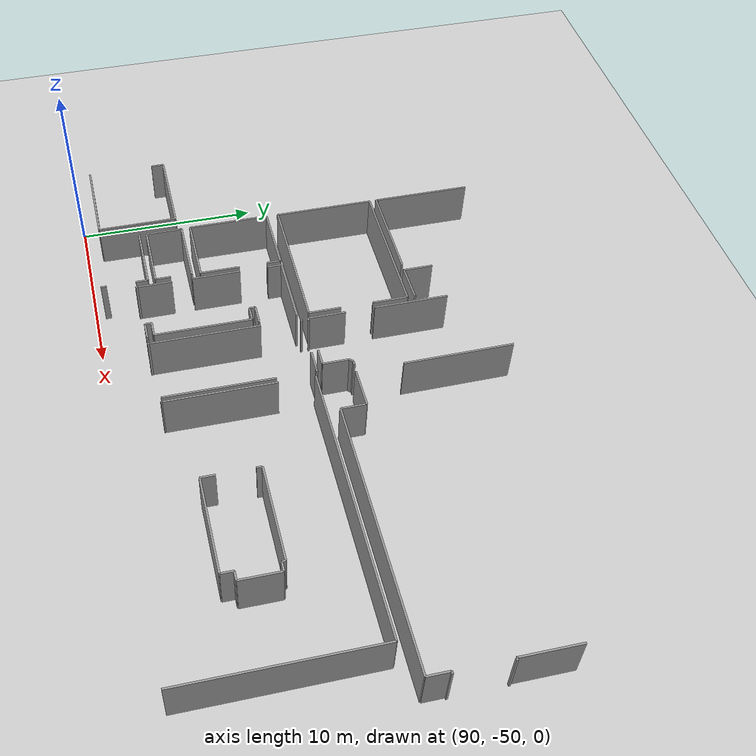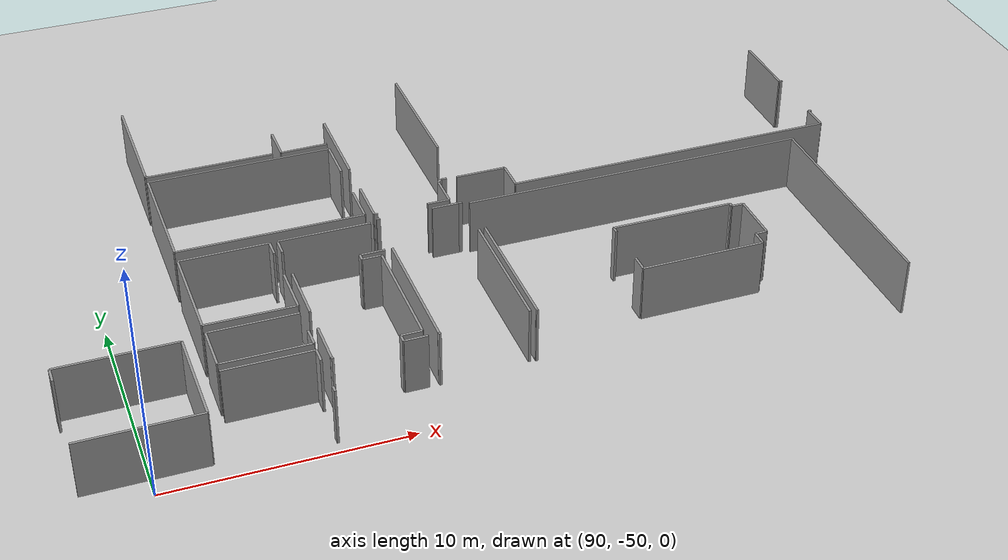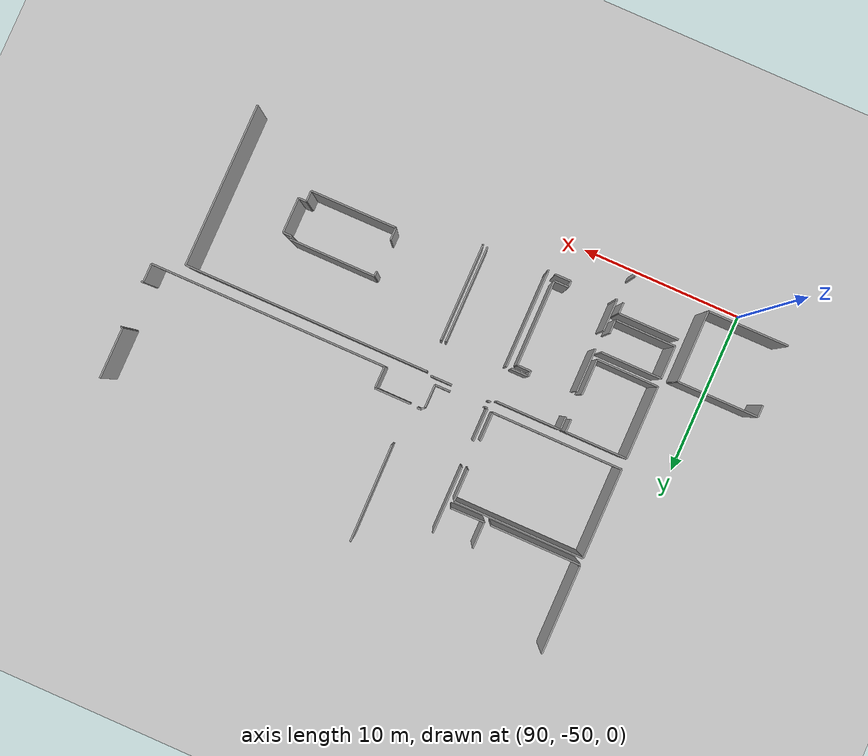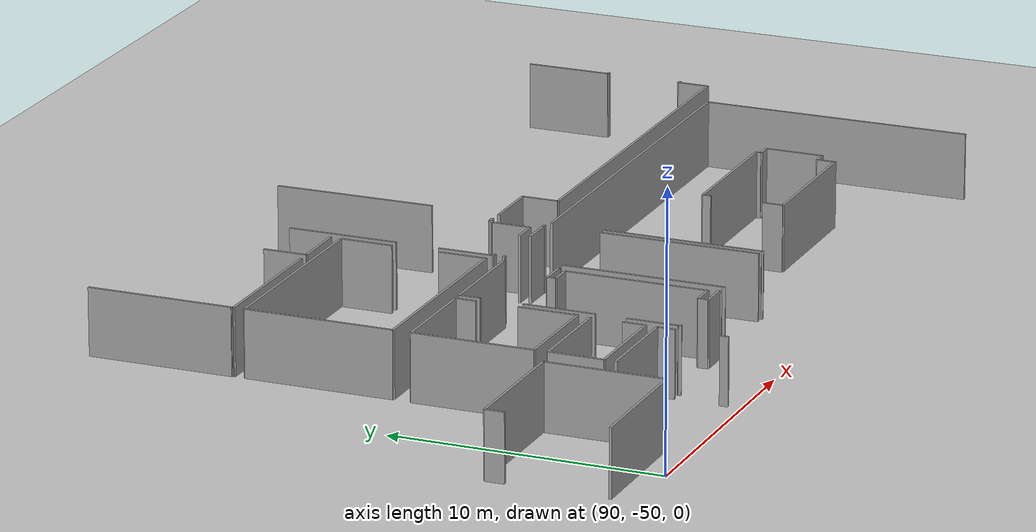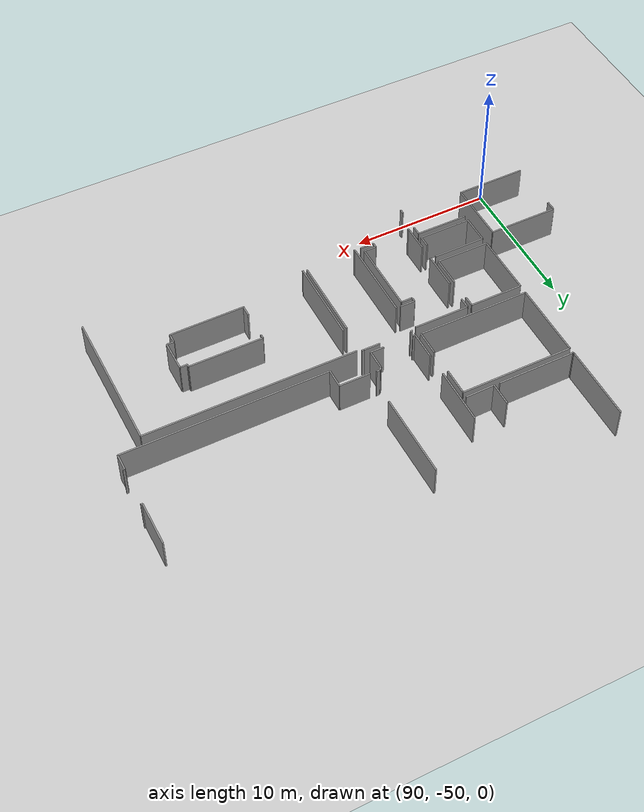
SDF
<sdf version="1.6">
 <world name="default">
  <model name="ground_plane">
   <static>1</static>
   <link name="link">
    <collision name="collision">
     <geometry><plane><normal>0 0 1</normal><size>100 100</size></plane></geometry>
     <surface><friction><ode><mu>100</mu><mu2>50</mu2></ode></friction></surface>
    </collision>
    <visual name="visual">
     <cast_shadows>0</cast_shadows>
     <geometry><plane><normal>0 0 1</normal><size>100 100</size></plane></geometry>
     <material>
      <script><uri>file://media/materials/scripts/gazebo.material</uri><name>Gazebo/Grey</name></script>
     </material>
    </visual>
   </link>
  </model>
  <model name="50036894">
   <static>1</static>
   <link name="Wall_535">
    <collision name="Wall_535_Collision">
     <geometry><box><size>0.717179466046 0.1 2.5</size></box></geometry>
     <pose>0.358589733023 0 1.25 0 0 0</pose>
    </collision>
    <visual name="Wall_535_Visual">
     <pose>0.358589733023 0 1.25 0 0 0</pose>
     <geometry><box><size>0.717179466046 0.1 2.5</size></box></geometry>
     <material>
      <script><uri>file://media/materials/scripts/gazebo.material</uri><name>Gazebo/Grey</name></script>
      <ambient>1 1 1 1</ambient>
     </material>
    </visual>
    <pose>210.166297891 -112.720932739 0 0 0 1.57079632679</pose>
   </link>
   <link name="Wall_536">
    <collision name="Wall_536_Collision">
     <geometry><box><size>4.97055075478 0.1 2.5</size></box></geometry>
     <pose>2.48527537739 0 1.25 0 0 0</pose>
    </collision>
    <visual name="Wall_536_Visual">
     <pose>2.48527537739 0 1.25 0 0 0</pose>
     <geometry><box><size>4.97055075478 0.1 2.5</size></box></geometry>
     <material>
      <script><uri>file://media/materials/scripts/gazebo.material</uri><name>Gazebo/Grey</name></script>
      <ambient>1 1 1 1</ambient>
     </material>
    </visual>
    <pose>210.166297891 -112.003753273 0 0 0 0.0</pose>
   </link>
   <link name="Wall_537">
    <collision name="Wall_537_Collision">
     <geometry><box><size>4.41187099392 0.1 2.5</size></box></geometry>
     <pose>2.20593549696 0 1.25 0 0 0</pose>
    </collision>
    <visual name="Wall_537_Visual">
     <pose>2.20593549696 0 1.25 0 0 0</pose>
     <geometry><box><size>4.41187099392 0.1 2.5</size></box></geometry>
     <material>
      <script><uri>file://media/materials/scripts/gazebo.material</uri><name>Gazebo/Grey</name></script>
      <ambient>1 1 1 1</ambient>
     </material>
    </visual>
    <pose>215.136848645 -112.003753273 0 0 0 -1.57079632679</pose>
   </link>
   <link name="Wall_538">
    <collision name="Wall_538_Collision">
     <geometry><box><size>4.97057808781 0.1 2.5</size></box></geometry>
     <pose>2.48528904391 0 1.25 0 0 0</pose>
    </collision>
    <visual name="Wall_538_Visual">
     <pose>2.48528904391 0 1.25 0 0 0</pose>
     <geometry><box><size>4.97057808781 0.1 2.5</size></box></geometry>
     <material>
      <script><uri>file://media/materials/scripts/gazebo.material</uri><name>Gazebo/Grey</name></script>
      <ambient>1 1 1 1</ambient>
     </material>
    </visual>
    <pose>215.136848645 -116.415624267 0 0 0 -3.13827633922</pose>
   </link>
   <link name="Wall_584">
    <collision name="Wall_584_Collision">
     <geometry><box><size>5.93879375384 0.1 2.5</size></box></geometry>
     <pose>2.96939687692 0 1.25 0 0 0</pose>
    </collision>
    <visual name="Wall_584_Visual">
     <pose>2.96939687692 0 1.25 0 0 0</pose>
     <geometry><box><size>5.93879375384 0.1 2.5</size></box></geometry>
     <material>
      <script><uri>file://media/materials/scripts/gazebo.material</uri><name>Gazebo/Grey</name></script>
      <ambient>1 1 1 1</ambient>
     </material>
    </visual>
    <pose>224.443951334 -114.775342518 0 0 0 1.57079632679</pose>
   </link>
   <link name="Wall_585">
    <collision name="Wall_585_Collision">
     <geometry><box><size>0.164839693398 0.1 2.5</size></box></geometry>
     <pose>0.0824198466991 0 1.25 0 0 0</pose>
    </collision>
    <visual name="Wall_585_Visual">
     <pose>0.0824198466991 0 1.25 0 0 0</pose>
     <geometry><box><size>0.164839693398 0.1 2.5</size></box></geometry>
     <material>
      <script><uri>file://media/materials/scripts/gazebo.material</uri><name>Gazebo/Grey</name></script>
      <ambient>1 1 1 1</ambient>
     </material>
    </visual>
    <pose>224.443951334 -106.630232868 0 0 0 0.0</pose>
   </link>
   <link name="Wall_586">
    <collision name="Wall_586_Collision">
     <geometry><box><size>1.15894984435 0.1 2.5</size></box></geometry>
     <pose>0.579474922177 0 1.25 0 0 0</pose>
    </collision>
    <visual name="Wall_586_Visual">
     <pose>0.579474922177 0 1.25 0 0 0</pose>
     <geometry><box><size>1.15894984435 0.1 2.5</size></box></geometry>
     <material>
      <script><uri>file://media/materials/scripts/gazebo.material</uri><name>Gazebo/Grey</name></script>
      <ambient>1 1 1 1</ambient>
     </material>
    </visual>
    <pose>226.87089882 -106.630232868 0 0 0 0.0</pose>
   </link>
   <link name="Wall_587">
    <collision name="Wall_587_Collision">
     <geometry><box><size>0.162303698115 0.1 2.5</size></box></geometry>
     <pose>0.0811518490576 0 1.25 0 0 0</pose>
    </collision>
    <visual name="Wall_587_Visual">
     <pose>0.0811518490576 0 1.25 0 0 0</pose>
     <geometry><box><size>0.162303698115 0.1 2.5</size></box></geometry>
     <material>
      <script><uri>file://media/materials/scripts/gazebo.material</uri><name>Gazebo/Grey</name></script>
      <ambient>1 1 1 1</ambient>
     </material>
    </visual>
    <pose>228.029848664 -106.630232868 0 0 0 0.0</pose>
   </link>
   <link name="Wall_588">
    <collision name="Wall_588_Collision">
     <geometry><box><size>5.93727215667 0.1 2.5</size></box></geometry>
     <pose>2.96863607834 0 1.25 0 0 0</pose>
    </collision>
    <visual name="Wall_588_Visual">
     <pose>2.96863607834 0 1.25 0 0 0</pose>
     <geometry><box><size>5.93727215667 0.1 2.5</size></box></geometry>
     <material>
      <script><uri>file://media/materials/scripts/gazebo.material</uri><name>Gazebo/Grey</name></script>
      <ambient>1 1 1 1</ambient>
     </material>
    </visual>
    <pose>228.192152363 -108.754889716 0 0 0 -1.57079632679</pose>
   </link>
   <link name="Wall_591">
    <collision name="Wall_591_Collision">
     <geometry><box><size>0.114923964365 0.1 2.5</size></box></geometry>
     <pose>0.0574619821826 0 1.25 0 0 0</pose>
    </collision>
    <visual name="Wall_591_Visual">
     <pose>0.0574619821826 0 1.25 0 0 0</pose>
     <geometry><box><size>0.114923964365 0.1 2.5</size></box></geometry>
     <material>
      <script><uri>file://media/materials/scripts/gazebo.material</uri><name>Gazebo/Grey</name></script>
      <ambient>1 1 1 1</ambient>
     </material>
    </visual>
    <pose>224.469311287 -114.887433509 0 0 0 1.79329483748</pose>
   </link>
   <link name="Wall_592">
    <collision name="Wall_592_Collision">
     <geometry><box><size>1.88424449531 0.1 2.5</size></box></geometry>
     <pose>0.942122247653 0 1.25 0 0 0</pose>
    </collision>
    <visual name="Wall_592_Visual">
     <pose>0.942122247653 0 1.25 0 0 0</pose>
     <geometry><box><size>1.88424449531 0.1 2.5</size></box></geometry>
     <material>
      <script><uri>file://media/materials/scripts/gazebo.material</uri><name>Gazebo/Grey</name></script>
      <ambient>1 1 1 1</ambient>
     </material>
    </visual>
    <pose>220.188551249 -114.8384888 0 0 0 1.57079632679</pose>
   </link>
   <link name="Wall_593">
    <collision name="Wall_593_Collision">
     <geometry><box><size>2.66786703777 0.1 2.5</size></box></geometry>
     <pose>1.33393351888 0 1.25 0 0 0</pose>
    </collision>
    <visual name="Wall_593_Visual">
     <pose>1.33393351888 0 1.25 0 0 0</pose>
     <geometry><box><size>2.66786703777 0.1 2.5</size></box></geometry>
     <material>
      <script><uri>file://media/materials/scripts/gazebo.material</uri><name>Gazebo/Grey</name></script>
      <ambient>1 1 1 1</ambient>
     </material>
    </visual>
    <pose>220.188551249 -111.821161613 0 0 0 1.57079632679</pose>
   </link>
   <link name="Wall_594">
    <collision name="Wall_594_Collision">
     <geometry><box><size>0.794527322179 0.1 2.5</size></box></geometry>
     <pose>0.39726366109 0 1.25 0 0 0</pose>
    </collision>
    <visual name="Wall_594_Visual">
     <pose>0.39726366109 0 1.25 0 0 0</pose>
     <geometry><box><size>0.794527322179 0.1 2.5</size></box></geometry>
     <material>
      <script><uri>file://media/materials/scripts/gazebo.material</uri><name>Gazebo/Grey</name></script>
      <ambient>1 1 1 1</ambient>
     </material>
    </visual>
    <pose>220.188551249 -107.589853483 0 0 0 1.57079632679</pose>
   </link>
   <link name="Wall_595">
    <collision name="Wall_595_Collision">
     <geometry><box><size>3.94854465571 0.1 2.5</size></box></geometry>
     <pose>1.97427232785 0 1.25 0 0 0</pose>
    </collision>
    <visual name="Wall_595_Visual">
     <pose>1.97427232785 0 1.25 0 0 0</pose>
     <geometry><box><size>3.94854465571 0.1 2.5</size></box></geometry>
     <material>
      <script><uri>file://media/materials/scripts/gazebo.material</uri><name>Gazebo/Grey</name></script>
      <ambient>1 1 1 1</ambient>
     </material>
    </visual>
    <pose>220.188551249 -106.795326161 0 0 0 0.0</pose>
   </link>
   <link name="Wall_596">
    <collision name="Wall_596_Collision">
     <geometry><box><size>1.06511801888 0.1 2.5</size></box></geometry>
     <pose>0.53255900944 0 1.25 0 0 0</pose>
    </collision>
    <visual name="Wall_596_Visual">
     <pose>0.53255900944 0 1.25 0 0 0</pose>
     <geometry><box><size>1.06511801888 0.1 2.5</size></box></geometry>
     <material>
      <script><uri>file://media/materials/scripts/gazebo.material</uri><name>Gazebo/Grey</name></script>
      <ambient>1 1 1 1</ambient>
     </material>
    </visual>
    <pose>224.137095905 -108.852271935 0 0 0 3.14159265359</pose>
   </link>
   <link name="Wall_597">
    <collision name="Wall_597_Collision">
     <geometry><box><size>0.322071400947 0.1 2.5</size></box></geometry>
     <pose>0.161035700474 0 1.25 0 0 0</pose>
    </collision>
    <visual name="Wall_597_Visual">
     <pose>0.161035700474 0 1.25 0 0 0</pose>
     <geometry><box><size>0.322071400947 0.1 2.5</size></box></geometry>
     <material>
      <script><uri>file://media/materials/scripts/gazebo.material</uri><name>Gazebo/Grey</name></script>
      <ambient>1 1 1 1</ambient>
     </material>
    </visual>
    <pose>223.071977886 -108.852271935 0 0 0 -1.57079632679</pose>
   </link>
   <link name="Wall_598">
    <collision name="Wall_598_Collision">
     <geometry><box><size>0.829270457557 0.1 2.5</size></box></geometry>
     <pose>0.414635228778 0 1.25 0 0 0</pose>
    </collision>
    <visual name="Wall_598_Visual">
     <pose>0.414635228778 0 1.25 0 0 0</pose>
     <geometry><box><size>0.829270457557 0.1 2.5</size></box></geometry>
     <material>
      <script><uri>file://media/materials/scripts/gazebo.material</uri><name>Gazebo/Grey</name></script>
      <ambient>1 1 1 1</ambient>
     </material>
    </visual>
    <pose>223.071977886 -109.174343336 0 0 0 0.0</pose>
   </link>
   <link name="Wall_599">
    <collision name="Wall_599_Collision">
     <geometry><box><size>5.28171737601 0.1 2.5</size></box></geometry>
     <pose>2.640858688 0 1.25 0 0 0</pose>
    </collision>
    <visual name="Wall_599_Visual">
     <pose>2.640858688 0 1.25 0 0 0</pose>
     <geometry><box><size>5.28171737601 0.1 2.5</size></box></geometry>
     <material>
      <script><uri>file://media/materials/scripts/gazebo.material</uri><name>Gazebo/Grey</name></script>
      <ambient>1 1 1 1</ambient>
     </material>
    </visual>
    <pose>223.901248344 -109.174343336 0 0 0 -1.57079632679</pose>
   </link>
   <link name="Wall_600">
    <collision name="Wall_600_Collision">
     <geometry><box><size>0.877454367935 0.1 2.5</size></box></geometry>
     <pose>0.438727183967 0 1.25 0 0 0</pose>
    </collision>
    <visual name="Wall_600_Visual">
     <pose>0.438727183967 0 1.25 0 0 0</pose>
     <geometry><box><size>0.877454367935 0.1 2.5</size></box></geometry>
     <material>
      <script><uri>file://media/materials/scripts/gazebo.material</uri><name>Gazebo/Grey</name></script>
      <ambient>1 1 1 1</ambient>
     </material>
    </visual>
    <pose>223.901248344 -114.456060712 0 0 0 3.14159265359</pose>
   </link>
   <link name="Wall_601">
    <collision name="Wall_601_Collision">
     <geometry><box><size>0.362140126419 0.1 2.5</size></box></geometry>
     <pose>0.18107006321 0 1.25 0 0 0</pose>
    </collision>
    <visual name="Wall_601_Visual">
     <pose>0.18107006321 0 1.25 0 0 0</pose>
     <geometry><box><size>0.362140126419 0.1 2.5</size></box></geometry>
     <material>
      <script><uri>file://media/materials/scripts/gazebo.material</uri><name>Gazebo/Grey</name></script>
      <ambient>1 1 1 1</ambient>
     </material>
    </visual>
    <pose>223.023793976 -114.456060712 0 0 0 -1.57079632679</pose>
   </link>
   <link name="Wall_602">
    <collision name="Wall_602_Collision">
     <geometry><box><size>0.991574155672 0.1 2.5</size></box></geometry>
     <pose>0.495787077836 0 1.25 0 0 0</pose>
    </collision>
    <visual name="Wall_602_Visual">
     <pose>0.495787077836 0 1.25 0 0 0</pose>
     <geometry><box><size>0.991574155672 0.1 2.5</size></box></geometry>
     <material>
      <script><uri>file://media/materials/scripts/gazebo.material</uri><name>Gazebo/Grey</name></script>
      <ambient>1 1 1 1</ambient>
     </material>
    </visual>
    <pose>223.023793976 -114.818200838 0 0 0 0.0</pose>
   </link>
   <link name="Wall_605">
    <collision name="Wall_605_Collision">
     <geometry><box><size>0.119273765272 0.1 2.5</size></box></geometry>
     <pose>0.0596368826361 0 1.25 0 0 0</pose>
    </collision>
    <visual name="Wall_605_Visual">
     <pose>0.0596368826361 0 1.25 0 0 0</pose>
     <geometry><box><size>0.119273765272 0.1 2.5</size></box></geometry>
     <material>
      <script><uri>file://media/materials/scripts/gazebo.material</uri><name>Gazebo/Grey</name></script>
      <ambient>1 1 1 1</ambient>
     </material>
    </visual>
    <pose>220.221519188 -114.953115787 0 0 0 1.85084832045</pose>
   </link>
   <link name="Wall_606">
    <collision name="Wall_606_Collision">
     <geometry><box><size>5.95958891516 0.1 2.5</size></box></geometry>
     <pose>2.97979445758 0 1.25 0 0 0</pose>
    </collision>
    <visual name="Wall_606_Visual">
     <pose>2.97979445758 0 1.25 0 0 0</pose>
     <geometry><box><size>5.95958891516 0.1 2.5</size></box></geometry>
     <material>
      <script><uri>file://media/materials/scripts/gazebo.material</uri><name>Gazebo/Grey</name></script>
      <ambient>1 1 1 1</ambient>
     </material>
    </visual>
    <pose>228.476183834 -114.681510692 0 0 0 1.57079632679</pose>
   </link>
   <link name="Wall_607">
    <collision name="Wall_607_Collision">
     <geometry><box><size>15.1246758681 0.1 2.5</size></box></geometry>
     <pose>7.56233793405 0 1.25 0 0 0</pose>
    </collision>
    <visual name="Wall_607_Visual">
     <pose>7.56233793405 0 1.25 0 0 0</pose>
     <geometry><box><size>15.1246758681 0.1 2.5</size></box></geometry>
     <material>
      <script><uri>file://media/materials/scripts/gazebo.material</uri><name>Gazebo/Grey</name></script>
      <ambient>1 1 1 1</ambient>
     </material>
    </visual>
    <pose>228.476183834 -106.767937412 0 0 0 0.0</pose>
   </link>
   <link name="Wall_608">
    <collision name="Wall_608_Collision">
     <geometry><box><size>10.0942756246 0.1 2.5</size></box></geometry>
     <pose>5.04713781232 0 1.25 0 0 0</pose>
    </collision>
    <visual name="Wall_608_Visual">
     <pose>5.04713781232 0 1.25 0 0 0</pose>
     <geometry><box><size>10.0942756246 0.1 2.5</size></box></geometry>
     <material>
      <script><uri>file://media/materials/scripts/gazebo.material</uri><name>Gazebo/Grey</name></script>
      <ambient>1 1 1 1</ambient>
     </material>
    </visual>
    <pose>243.600859702 -106.767937412 0 0 0 -1.57079632679</pose>
   </link>
   <link name="Wall_610">
    <collision name="Wall_610_Collision">
     <geometry><box><size>0.0716282877854 0.1 2.5</size></box></geometry>
     <pose>0.0358141438927 0 1.25 0 0 0</pose>
    </collision>
    <visual name="Wall_610_Visual">
     <pose>0.0358141438927 0 1.25 0 0 0</pose>
     <geometry><box><size>0.0716282877854 0.1 2.5</size></box></geometry>
     <material>
      <script><uri>file://media/materials/scripts/gazebo.material</uri><name>Gazebo/Grey</name></script>
      <ambient>1 1 1 1</ambient>
     </material>
    </visual>
    <pose>228.491399806 -114.751504162 0 0 0 1.78485701036</pose>
   </link>
   <link name="Wall_611">
    <collision name="Wall_611_Collision">
     <geometry><box><size>0.767138573122 0.1 2.5</size></box></geometry>
     <pose>0.383569286561 0 1.25 0 0 0</pose>
    </collision>
    <visual name="Wall_611_Visual">
     <pose>0.383569286561 0 1.25 0 0 0</pose>
     <geometry><box><size>0.767138573122 0.1 2.5</size></box></geometry>
     <material>
      <script><uri>file://media/materials/scripts/gazebo.material</uri><name>Gazebo/Grey</name></script>
      <ambient>1 1 1 1</ambient>
     </material>
    </visual>
    <pose>233.444198594 -113.587989526 0 0 0 1.57079632679</pose>
   </link>
   <link name="Wall_612">
    <collision name="Wall_612_Collision">
     <geometry><box><size>0.306855429249 0.1 2.5</size></box></geometry>
     <pose>0.153427714624 0 1.25 0 0 0</pose>
    </collision>
    <visual name="Wall_612_Visual">
     <pose>0.153427714624 0 1.25 0 0 0</pose>
     <geometry><box><size>0.306855429249 0.1 2.5</size></box></geometry>
     <material>
      <script><uri>file://media/materials/scripts/gazebo.material</uri><name>Gazebo/Grey</name></script>
      <ambient>1 1 1 1</ambient>
     </material>
    </visual>
    <pose>233.444198594 -110.849875419 0 0 0 1.57079632679</pose>
   </link>
   <link name="Wall_613">
    <collision name="Wall_613_Collision">
     <geometry><box><size>5.29262215572 0.1 2.5</size></box></geometry>
     <pose>2.64631107786 0 1.25 0 0 0</pose>
    </collision>
    <visual name="Wall_613_Visual">
     <pose>2.64631107786 0 1.25 0 0 0</pose>
     <geometry><box><size>5.29262215572 0.1 2.5</size></box></geometry>
     <material>
      <script><uri>file://media/materials/scripts/gazebo.material</uri><name>Gazebo/Grey</name></script>
      <ambient>1 1 1 1</ambient>
     </material>
    </visual>
    <pose>233.444198594 -110.54301999 0 0 0 0.0</pose>
   </link>
   <link name="Wall_614">
    <collision name="Wall_614_Collision">
     <geometry><box><size>0.191974842927 0.1 2.5</size></box></geometry>
     <pose>0.0959874214634 0 1.25 0 0 0</pose>
    </collision>
    <visual name="Wall_614_Visual">
     <pose>0.0959874214634 0 1.25 0 0 0</pose>
     <geometry><box><size>0.191974842927 0.1 2.5</size></box></geometry>
     <material>
      <script><uri>file://media/materials/scripts/gazebo.material</uri><name>Gazebo/Grey</name></script>
      <ambient>1 1 1 1</ambient>
     </material>
    </visual>
    <pose>238.73682075 -110.54301999 0 0 0 -1.57079632679</pose>
   </link>
   <link name="Wall_615">
    <collision name="Wall_615_Collision">
     <geometry><box><size>0.517343037742 0.1 2.5</size></box></geometry>
     <pose>0.258671518871 0 1.25 0 0 0</pose>
    </collision>
    <visual name="Wall_615_Visual">
     <pose>0.258671518871 0 1.25 0 0 0</pose>
     <geometry><box><size>0.517343037742 0.1 2.5</size></box></geometry>
     <material>
      <script><uri>file://media/materials/scripts/gazebo.material</uri><name>Gazebo/Grey</name></script>
      <ambient>1 1 1 1</ambient>
     </material>
    </visual>
    <pose>238.73682075 -110.734994833 0 0 0 0.0</pose>
   </link>
   <link name="Wall_616">
    <collision name="Wall_616_Collision">
     <geometry><box><size>2.16675436984 0.1 2.5</size></box></geometry>
     <pose>1.08337718492 0 1.25 0 0 0</pose>
    </collision>
    <visual name="Wall_616_Visual">
     <pose>1.08337718492 0 1.25 0 0 0</pose>
     <geometry><box><size>2.16675436984 0.1 2.5</size></box></geometry>
     <material>
      <script><uri>file://media/materials/scripts/gazebo.material</uri><name>Gazebo/Grey</name></script>
      <ambient>1 1 1 1</ambient>
     </material>
    </visual>
    <pose>239.254163787 -110.734994833 0 0 0 -1.57079632679</pose>
   </link>
   <link name="Wall_617">
    <collision name="Wall_617_Collision">
     <geometry><box><size>0.499591070761 0.1 2.5</size></box></geometry>
     <pose>0.24979553538 0 1.25 0 0 0</pose>
    </collision>
    <visual name="Wall_617_Visual">
     <pose>0.24979553538 0 1.25 0 0 0</pose>
     <geometry><box><size>0.499591070761 0.1 2.5</size></box></geometry>
     <material>
      <script><uri>file://media/materials/scripts/gazebo.material</uri><name>Gazebo/Grey</name></script>
      <ambient>1 1 1 1</ambient>
     </material>
    </visual>
    <pose>239.254163787 -112.901749203 0 0 0 3.14159265359</pose>
   </link>
   <link name="Wall_618">
    <collision name="Wall_618_Collision">
     <geometry><box><size>0.671277951423 0.1 2.5</size></box></geometry>
     <pose>0.335638975712 0 1.25 0 0 0</pose>
    </collision>
    <visual name="Wall_618_Visual">
     <pose>0.335638975712 0 1.25 0 0 0</pose>
     <geometry><box><size>0.671277951423 0.1 2.5</size></box></geometry>
     <material>
      <script><uri>file://media/materials/scripts/gazebo.material</uri><name>Gazebo/Grey</name></script>
      <ambient>1 1 1 1</ambient>
     </material>
    </visual>
    <pose>238.754572716 -112.901749203 0 0 0 -1.57079632679</pose>
   </link>
   <link name="Wall_619">
    <collision name="Wall_619_Collision">
     <geometry><box><size>5.31039520146 0.1 2.5</size></box></geometry>
     <pose>2.65519760073 0 1.25 0 0 0</pose>
    </collision>
    <visual name="Wall_619_Visual">
     <pose>2.65519760073 0 1.25 0 0 0</pose>
     <geometry><box><size>5.31039520146 0.1 2.5</size></box></geometry>
     <material>
      <script><uri>file://media/materials/scripts/gazebo.material</uri><name>Gazebo/Grey</name></script>
      <ambient>1 1 1 1</ambient>
     </material>
    </visual>
    <pose>238.754572716 -113.573027154 0 0 0 -3.13877508702</pose>
   </link>
   <link name="Wall_620">
    <collision name="Wall_620_Collision">
     <geometry><box><size>4.48541485713 0.1 2.5</size></box></geometry>
     <pose>2.24270742856 0 1.25 0 0 0</pose>
    </collision>
    <visual name="Wall_620_Visual">
     <pose>2.24270742856 0 1.25 0 0 0</pose>
     <geometry><box><size>4.48541485713 0.1 2.5</size></box></geometry>
     <material>
      <script><uri>file://media/materials/scripts/gazebo.material</uri><name>Gazebo/Grey</name></script>
      <ambient>1 1 1 1</ambient>
     </material>
    </visual>
    <pose>216.07009491 -111.286827407 0 0 0 1.57079632679</pose>
   </link>
   <link name="Wall_621">
    <collision name="Wall_621_Collision">
     <geometry><box><size>3.78624095759 0.1 2.5</size></box></geometry>
     <pose>1.8931204788 0 1.25 0 0 0</pose>
    </collision>
    <visual name="Wall_621_Visual">
     <pose>1.8931204788 0 1.25 0 0 0</pose>
     <geometry><box><size>3.78624095759 0.1 2.5</size></box></geometry>
     <material>
      <script><uri>file://media/materials/scripts/gazebo.material</uri><name>Gazebo/Grey</name></script>
      <ambient>1 1 1 1</ambient>
     </material>
    </visual>
    <pose>216.07009491 -106.801412549 0 0 0 0.0</pose>
   </link>
   <link name="Wall_622">
    <collision name="Wall_622_Collision">
     <geometry><box><size>0.766884973594 0.1 2.5</size></box></geometry>
     <pose>0.383442486797 0 1.25 0 0 0</pose>
    </collision>
    <visual name="Wall_622_Visual">
     <pose>0.383442486797 0 1.25 0 0 0</pose>
     <geometry><box><size>0.766884973594 0.1 2.5</size></box></geometry>
     <material>
      <script><uri>file://media/materials/scripts/gazebo.material</uri><name>Gazebo/Grey</name></script>
      <ambient>1 1 1 1</ambient>
     </material>
    </visual>
    <pose>219.856335867 -106.801412549 0 0 0 -1.57079632679</pose>
   </link>
   <link name="Wall_623">
    <collision name="Wall_623_Collision">
     <geometry><box><size>2.18450633682 0.1 2.5</size></box></geometry>
     <pose>1.09225316841 0 1.25 0 0 0</pose>
    </collision>
    <visual name="Wall_623_Visual">
     <pose>1.09225316841 0 1.25 0 0 0</pose>
     <geometry><box><size>2.18450633682 0.1 2.5</size></box></geometry>
     <material>
      <script><uri>file://media/materials/scripts/gazebo.material</uri><name>Gazebo/Grey</name></script>
      <ambient>1 1 1 1</ambient>
     </material>
    </visual>
    <pose>219.856335867 -109.119058639 0 0 0 -1.57079632679</pose>
   </link>
   <link name="Wall_624">
    <collision name="Wall_624_Collision">
     <geometry><box><size>3.78627795271 0.1 2.5</size></box></geometry>
     <pose>1.89313897635 0 1.25 0 0 0</pose>
    </collision>
    <visual name="Wall_624_Visual">
     <pose>1.89313897635 0 1.25 0 0 0</pose>
     <geometry><box><size>3.78627795271 0.1 2.5</size></box></geometry>
     <material>
      <script><uri>file://media/materials/scripts/gazebo.material</uri><name>Gazebo/Grey</name></script>
      <ambient>1 1 1 1</ambient>
     </material>
    </visual>
    <pose>219.856335867 -111.303564975 0 0 0 3.13717205278</pose>
   </link>
   <link name="Wall_625">
    <collision name="Wall_625_Collision">
     <geometry><box><size>2.01738424767 0.1 2.5</size></box></geometry>
     <pose>1.00869212383 0 1.25 0 0 0</pose>
    </collision>
    <visual name="Wall_625_Visual">
     <pose>1.00869212383 0 1.25 0 0 0</pose>
     <geometry><box><size>2.01738424767 0.1 2.5</size></box></geometry>
     <material>
      <script><uri>file://media/materials/scripts/gazebo.material</uri><name>Gazebo/Grey</name></script>
      <ambient>1 1 1 1</ambient>
     </material>
    </visual>
    <pose>216.087846877 -113.804563524 0 0 0 1.57079632679</pose>
   </link>
   <link name="Wall_626">
    <collision name="Wall_626_Collision">
     <geometry><box><size>3.71776908495 0.1 2.5</size></box></geometry>
     <pose>1.85888454247 0 1.25 0 0 0</pose>
    </collision>
    <visual name="Wall_626_Visual">
     <pose>1.85888454247 0 1.25 0 0 0</pose>
     <geometry><box><size>3.71776908495 0.1 2.5</size></box></geometry>
     <material>
      <script><uri>file://media/materials/scripts/gazebo.material</uri><name>Gazebo/Grey</name></script>
      <ambient>1 1 1 1</ambient>
     </material>
    </visual>
    <pose>216.087846877 -111.787179276 0 0 0 0.0</pose>
   </link>
   <link name="Wall_627">
    <collision name="Wall_627_Collision">
     <geometry><box><size>0.840936035859 0.1 2.5</size></box></geometry>
     <pose>0.420468017929 0 1.25 0 0 0</pose>
    </collision>
    <visual name="Wall_627_Visual">
     <pose>0.420468017929 0 1.25 0 0 0</pose>
     <geometry><box><size>0.840936035859 0.1 2.5</size></box></geometry>
     <material>
      <script><uri>file://media/materials/scripts/gazebo.material</uri><name>Gazebo/Grey</name></script>
      <ambient>1 1 1 1</ambient>
     </material>
    </visual>
    <pose>219.805615962 -112.966670682 0 0 0 -1.57079632679</pose>
   </link>
   <link name="Wall_628">
    <collision name="Wall_628_Collision">
     <geometry><box><size>3.71777033046 0.1 2.5</size></box></geometry>
     <pose>1.85888516523 0 1.25 0 0 0</pose>
    </collision>
    <visual name="Wall_628_Visual">
     <pose>1.85888516523 0 1.25 0 0 0</pose>
     <geometry><box><size>3.71777033046 0.1 2.5</size></box></geometry>
     <material>
      <script><uri>file://media/materials/scripts/gazebo.material</uri><name>Gazebo/Grey</name></script>
      <ambient>1 1 1 1</ambient>
     </material>
    </visual>
    <pose>219.805615962 -113.807606718 0 0 0 3.14077409988</pose>
   </link>
   <link name="Wall_630">
    <collision name="Wall_630_Collision">
     <geometry><box><size>3.71269709438 0.1 2.5</size></box></geometry>
     <pose>1.85634854719 0 1.25 0 0 0</pose>
    </collision>
    <visual name="Wall_630_Visual">
     <pose>1.85634854719 0 1.25 0 0 0</pose>
     <geometry><box><size>3.71269709438 0.1 2.5</size></box></geometry>
     <material>
      <script><uri>file://media/materials/scripts/gazebo.material</uri><name>Gazebo/Grey</name></script>
      <ambient>1 1 1 1</ambient>
     </material>
    </visual>
    <pose>216.067558914 -114.228074736 0 0 0 0.0</pose>
   </link>
   <link name="Wall_631">
    <collision name="Wall_631_Collision">
     <geometry><box><size>0.666966759442 0.1 2.5</size></box></geometry>
     <pose>0.333483379721 0 1.25 0 0 0</pose>
    </collision>
    <visual name="Wall_631_Visual">
     <pose>0.333483379721 0 1.25 0 0 0</pose>
     <geometry><box><size>0.666966759442 0.1 2.5</size></box></geometry>
     <material>
      <script><uri>file://media/materials/scripts/gazebo.material</uri><name>Gazebo/Grey</name></script>
      <ambient>1 1 1 1</ambient>
     </material>
    </visual>
    <pose>219.780256009 -114.228074736 0 0 0 -1.57079632679</pose>
   </link>
   <link name="Wall_632">
    <collision name="Wall_632_Collision">
     <geometry><box><size>0.316999410381 0.1 2.5</size></box></geometry>
     <pose>0.158499705191 0 1.25 0 0 0</pose>
    </collision>
    <visual name="Wall_632_Visual">
     <pose>0.158499705191 0 1.25 0 0 0</pose>
     <geometry><box><size>0.316999410381 0.1 2.5</size></box></geometry>
     <material>
      <script><uri>file://media/materials/scripts/gazebo.material</uri><name>Gazebo/Grey</name></script>
      <ambient>1 1 1 1</ambient>
     </material>
    </visual>
    <pose>219.780256009 -116.505905699 0 0 0 -1.57079632679</pose>
   </link>
   <link name="Wall_634">
    <collision name="Wall_634_Collision">
     <geometry><box><size>2.02879622644 0.1 2.5</size></box></geometry>
     <pose>1.01439811322 0 1.25 0 0 0</pose>
    </collision>
    <visual name="Wall_634_Visual">
     <pose>1.01439811322 0 1.25 0 0 0</pose>
     <geometry><box><size>2.02879622644 0.1 2.5</size></box></geometry>
     <material>
      <script><uri>file://media/materials/scripts/gazebo.material</uri><name>Gazebo/Grey</name></script>
      <ambient>1 1 1 1</ambient>
     </material>
    </visual>
    <pose>224.466775292 -106.218894433 0 0 0 1.57079632679</pose>
   </link>
   <link name="Wall_635">
    <collision name="Wall_635_Collision">
     <geometry><box><size>4.07965561184 0.1 2.5</size></box></geometry>
     <pose>2.03982780592 0 1.25 0 0 0</pose>
    </collision>
    <visual name="Wall_635_Visual">
     <pose>2.03982780592 0 1.25 0 0 0</pose>
     <geometry><box><size>4.07965561184 0.1 2.5</size></box></geometry>
     <material>
      <script><uri>file://media/materials/scripts/gazebo.material</uri><name>Gazebo/Grey</name></script>
      <ambient>1 1 1 1</ambient>
     </material>
    </visual>
    <pose>224.466775292 -102.580502 0 0 0 1.57079632679</pose>
   </link>
   <link name="Wall_691">
    <collision name="Wall_691_Collision">
     <geometry><box><size>0.245991542456 0.1 2.5</size></box></geometry>
     <pose>0.122995771228 0 1.25 0 0 0</pose>
    </collision>
    <visual name="Wall_691_Visual">
     <pose>0.122995771228 0 1.25 0 0 0</pose>
     <geometry><box><size>0.245991542456 0.1 2.5</size></box></geometry>
     <material>
      <script><uri>file://media/materials/scripts/gazebo.material</uri><name>Gazebo/Grey</name></script>
      <ambient>1 1 1 1</ambient>
     </material>
    </visual>
    <pose>228.1718644 -104.65038135 0 0 0 3.14159265359</pose>
   </link>
   <link name="Wall_692">
    <collision name="Wall_692_Collision">
     <geometry><box><size>0.248259431583 0.1 2.5</size></box></geometry>
     <pose>0.124129715791 0 1.25 0 0 0</pose>
    </collision>
    <visual name="Wall_692_Visual">
     <pose>0.124129715791 0 1.25 0 0 0</pose>
     <geometry><box><size>0.248259431583 0.1 2.5</size></box></geometry>
     <material>
      <script><uri>file://media/materials/scripts/gazebo.material</uri><name>Gazebo/Grey</name></script>
      <ambient>1 1 1 1</ambient>
     </material>
    </visual>
    <pose>227.925872858 -104.65038135 0 0 0 -2.31067281463</pose>
   </link>
   <link name="Wall_693">
    <collision name="Wall_693_Collision">
     <geometry><box><size>1.41888936087 0.1 2.5</size></box></geometry>
     <pose>0.709444680433 0 1.25 0 0 0</pose>
    </collision>
    <visual name="Wall_693_Visual">
     <pose>0.709444680433 0 1.25 0 0 0</pose>
     <geometry><box><size>1.41888936087 0.1 2.5</size></box></geometry>
     <material>
      <script><uri>file://media/materials/scripts/gazebo.material</uri><name>Gazebo/Grey</name></script>
      <ambient>1 1 1 1</ambient>
     </material>
    </visual>
    <pose>227.758497169 -104.833733809 0 0 0 -1.57079632679</pose>
   </link>
   <link name="Wall_694">
    <collision name="Wall_694_Collision">
     <geometry><box><size>0.963678207559 0.1 2.5</size></box></geometry>
     <pose>0.481839103779 0 1.25 0 0 0</pose>
    </collision>
    <visual name="Wall_694_Visual">
     <pose>0.481839103779 0 1.25 0 0 0</pose>
     <geometry><box><size>0.963678207559 0.1 2.5</size></box></geometry>
     <material>
      <script><uri>file://media/materials/scripts/gazebo.material</uri><name>Gazebo/Grey</name></script>
      <ambient>1 1 1 1</ambient>
     </material>
    </visual>
    <pose>227.758497169 -106.25262317 0 0 0 3.14159265359</pose>
   </link>
   <link name="Wall_695">
    <collision name="Wall_695_Collision">
     <geometry><box><size>0.170740296588 0.1 2.5</size></box></geometry>
     <pose>0.085370148294 0 1.25 0 0 0</pose>
    </collision>
    <visual name="Wall_695_Visual">
     <pose>0.085370148294 0 1.25 0 0 0</pose>
     <geometry><box><size>0.170740296588 0.1 2.5</size></box></geometry>
     <material>
      <script><uri>file://media/materials/scripts/gazebo.material</uri><name>Gazebo/Grey</name></script>
      <ambient>1 1 1 1</ambient>
     </material>
    </visual>
    <pose>224.63415098 -106.25262317 0 0 0 2.94274064269</pose>
   </link>
   <link name="Wall_696">
    <collision name="Wall_696_Collision">
     <geometry><box><size>5.50234896563 0.1 2.5</size></box></geometry>
     <pose>2.75117448282 0 1.25 0 0 0</pose>
    </collision>
    <visual name="Wall_696_Visual">
     <pose>2.75117448282 0 1.25 0 0 0</pose>
     <geometry><box><size>5.50234896563 0.1 2.5</size></box></geometry>
     <material>
      <script><uri>file://media/materials/scripts/gazebo.material</uri><name>Gazebo/Grey</name></script>
      <ambient>1 1 1 1</ambient>
     </material>
    </visual>
    <pose>216.087846877 -106.13444579 0 0 0 1.57079632679</pose>
   </link>
   <link name="Wall_697">
    <collision name="Wall_697_Collision">
     <geometry><box><size>8.0036011133 0.1 2.5</size></box></geometry>
     <pose>4.00180055665 0 1.25 0 0 0</pose>
    </collision>
    <visual name="Wall_697_Visual">
     <pose>4.00180055665 0 1.25 0 0 0</pose>
     <geometry><box><size>8.0036011133 0.1 2.5</size></box></geometry>
     <material>
      <script><uri>file://media/materials/scripts/gazebo.material</uri><name>Gazebo/Grey</name></script>
      <ambient>1 1 1 1</ambient>
     </material>
    </visual>
    <pose>216.087846877 -100.632096824 0 0 0 0.0</pose>
   </link>
   <link name="Wall_698">
    <collision name="Wall_698_Collision">
     <geometry><box><size>1.95271636795 0.1 2.5</size></box></geometry>
     <pose>0.976358183974 0 1.25 0 0 0</pose>
    </collision>
    <visual name="Wall_698_Visual">
     <pose>0.976358183974 0 1.25 0 0 0</pose>
     <geometry><box><size>1.95271636795 0.1 2.5</size></box></geometry>
     <material>
      <script><uri>file://media/materials/scripts/gazebo.material</uri><name>Gazebo/Grey</name></script>
      <ambient>1 1 1 1</ambient>
     </material>
    </visual>
    <pose>224.09144799 -100.632096824 0 0 0 -1.57079632679</pose>
   </link>
   <link name="Wall_699">
    <collision name="Wall_699_Collision">
     <geometry><box><size>1.78331188304 0.1 2.5</size></box></geometry>
     <pose>0.89165594152 0 1.25 0 0 0</pose>
    </collision>
    <visual name="Wall_699_Visual">
     <pose>0.89165594152 0 1.25 0 0 0</pose>
     <geometry><box><size>1.78331188304 0.1 2.5</size></box></geometry>
     <material>
      <script><uri>file://media/materials/scripts/gazebo.material</uri><name>Gazebo/Grey</name></script>
      <ambient>1 1 1 1</ambient>
     </material>
    </visual>
    <pose>224.09144799 -104.34935871 0 0 0 -1.57079632679</pose>
   </link>
   <link name="Wall_700">
    <collision name="Wall_700_Collision">
     <geometry><box><size>8.00360131017 0.1 2.5</size></box></geometry>
     <pose>4.00180065509 0 1.25 0 0 0</pose>
    </collision>
    <visual name="Wall_700_Visual">
     <pose>4.00180065509 0 1.25 0 0 0</pose>
     <geometry><box><size>8.00360131017 0.1 2.5</size></box></geometry>
     <material>
      <script><uri>file://media/materials/scripts/gazebo.material</uri><name>Gazebo/Grey</name></script>
      <ambient>1 1 1 1</ambient>
     </material>
    </visual>
    <pose>224.09144799 -106.132670593 0 0 0 -3.14137085385</pose>
   </link>
   <link name="Wall_701">
    <collision name="Wall_701_Collision">
     <geometry><box><size>0.050719905661 0.1 2.5</size></box></geometry>
     <pose>0.0253599528305 0 1.25 0 0 0</pose>
    </collision>
    <visual name="Wall_701_Visual">
     <pose>0.0253599528305 0 1.25 0 0 0</pose>
     <geometry><box><size>0.050719905661 0.1 2.5</size></box></geometry>
     <material>
      <script><uri>file://media/materials/scripts/gazebo.material</uri><name>Gazebo/Grey</name></script>
      <ambient>1 1 1 1</ambient>
     </material>
    </visual>
    <pose>216.128422801 -100.143917732 0 0 0 3.14159265359</pose>
   </link>
   <link name="Wall_702">
    <collision name="Wall_702_Collision">
     <geometry><box><size>5.39532996469 0.1 2.5</size></box></geometry>
     <pose>2.69766498234 0 1.25 0 0 0</pose>
    </collision>
    <visual name="Wall_702_Visual">
     <pose>2.69766498234 0 1.25 0 0 0</pose>
     <geometry><box><size>5.39532996469 0.1 2.5</size></box></geometry>
     <material>
      <script><uri>file://media/materials/scripts/gazebo.material</uri><name>Gazebo/Grey</name></script>
      <ambient>1 1 1 1</ambient>
     </material>
    </visual>
    <pose>216.077702895 -100.143917732 0 0 0 1.57079632679</pose>
   </link>
   <link name="Wall_706">
    <collision name="Wall_706_Collision">
     <geometry><box><size>5.54875767931 0.1 2.5</size></box></geometry>
     <pose>2.77437883966 0 1.25 0 0 0</pose>
    </collision>
    <visual name="Wall_706_Visual">
     <pose>2.77437883966 0 1.25 0 0 0</pose>
     <geometry><box><size>5.54875767931 0.1 2.5</size></box></geometry>
     <material>
      <script><uri>file://media/materials/scripts/gazebo.material</uri><name>Gazebo/Grey</name></script>
      <ambient>1 1 1 1</ambient>
     </material>
    </visual>
    <pose>221.626460575 -100.226591179 0 0 0 3.14159265359</pose>
   </link>
   <link name="Wall_707">
    <collision name="Wall_707_Collision">
     <geometry><box><size>0.096991791103 0.1 2.5</size></box></geometry>
     <pose>0.0484958955515 0 1.25 0 0 0</pose>
    </collision>
    <visual name="Wall_707_Visual">
     <pose>0.0484958955515 0 1.25 0 0 0</pose>
     <geometry><box><size>0.096991791103 0.1 2.5</size></box></geometry>
     <material>
      <script><uri>file://media/materials/scripts/gazebo.material</uri><name>Gazebo/Grey</name></script>
      <ambient>1 1 1 1</ambient>
     </material>
    </visual>
    <pose>216.077702895 -100.226591179 0 0 0 1.02051167571</pose>
   </link>
   <link name="Wall_708">
    <collision name="Wall_708_Collision">
     <geometry><box><size>1.6207545854 0.1 2.5</size></box></geometry>
     <pose>0.810377292698 0 1.25 0 0 0</pose>
    </collision>
    <visual name="Wall_708_Visual">
     <pose>0.810377292698 0 1.25 0 0 0</pose>
     <geometry><box><size>1.6207545854 0.1 2.5</size></box></geometry>
     <material>
      <script><uri>file://media/materials/scripts/gazebo.material</uri><name>Gazebo/Grey</name></script>
      <ambient>1 1 1 1</ambient>
     </material>
    </visual>
    <pose>222.042363801 -100.241299951 0 0 0 1.57079632679</pose>
   </link>
   <link name="Wall_713">
    <collision name="Wall_713_Collision">
     <geometry><box><size>2.06955339211 0.1 2.5</size></box></geometry>
     <pose>1.03477669605 0 1.25 0 0 0</pose>
    </collision>
    <visual name="Wall_713_Visual">
     <pose>1.03477669605 0 1.25 0 0 0</pose>
     <geometry><box><size>2.06955339211 0.1 2.5</size></box></geometry>
     <material>
      <script><uri>file://media/materials/scripts/gazebo.material</uri><name>Gazebo/Grey</name></script>
      <ambient>1 1 1 1</ambient>
     </material>
    </visual>
    <pose>224.111735952 -100.213911202 0 0 0 -3.12835813221</pose>
   </link>
   <link name="Wall_720">
    <collision name="Wall_720_Collision">
     <geometry><box><size>3.13575816749 0.1 2.5</size></box></geometry>
     <pose>1.56787908374 0 1.25 0 0 0</pose>
    </collision>
    <visual name="Wall_720_Visual">
     <pose>1.56787908374 0 1.25 0 0 0</pose>
     <geometry><box><size>3.13575816749 0.1 2.5</size></box></geometry>
     <material>
      <script><uri>file://media/materials/scripts/gazebo.material</uri><name>Gazebo/Grey</name></script>
      <ambient>1 1 1 1</ambient>
     </material>
    </visual>
    <pose>245.411560334 -98.8959544535 0 0 0 -1.57079632679</pose>
   </link>
   <link name="Wall_721">
    <collision name="Wall_721_Collision">
     <geometry><box><size>0.131871754719 0.1 2.5</size></box></geometry>
     <pose>0.0659358773593 0 1.25 0 0 0</pose>
    </collision>
    <visual name="Wall_721_Visual">
     <pose>0.0659358773593 0 1.25 0 0 0</pose>
     <geometry><box><size>0.131871754719 0.1 2.5</size></box></geometry>
     <material>
      <script><uri>file://media/materials/scripts/gazebo.material</uri><name>Gazebo/Grey</name></script>
      <ambient>1 1 1 1</ambient>
     </material>
    </visual>
    <pose>245.411560334 -102.031712621 0 0 0 0.0</pose>
   </link>
   <link name="Wall_722">
    <collision name="Wall_722_Collision">
     <geometry><box><size>0.134407750002 0.1 2.5</size></box></geometry>
     <pose>0.0672038750008 0 1.25 0 0 0</pose>
    </collision>
    <visual name="Wall_722_Visual">
     <pose>0.0672038750008 0 1.25 0 0 0</pose>
     <geometry><box><size>0.134407750002 0.1 2.5</size></box></geometry>
     <material>
      <script><uri>file://media/materials/scripts/gazebo.material</uri><name>Gazebo/Grey</name></script>
      <ambient>1 1 1 1</ambient>
     </material>
    </visual>
    <pose>245.543432089 -104.893583298 0 0 0 3.14159265359</pose>
   </link>
   <link name="Wall_723">
    <collision name="Wall_723_Collision">
     <geometry><box><size>1.15362425426 0.1 2.5</size></box></geometry>
     <pose>0.576812127129 0 1.25 0 0 0</pose>
    </collision>
    <visual name="Wall_723_Visual">
     <pose>0.576812127129 0 1.25 0 0 0</pose>
     <geometry><box><size>1.15362425426 0.1 2.5</size></box></geometry>
     <material>
      <script><uri>file://media/materials/scripts/gazebo.material</uri><name>Gazebo/Grey</name></script>
      <ambient>1 1 1 1</ambient>
     </material>
    </visual>
    <pose>245.409024339 -104.893583298 0 0 0 -1.57079632679</pose>
   </link>
   <link name="Wall_724">
    <collision name="Wall_724_Collision">
     <geometry><box><size>14.5946528539 0.1 2.5</size></box></geometry>
     <pose>7.29732642697 0 1.25 0 0 0</pose>
    </collision>
    <visual name="Wall_724_Visual">
     <pose>7.29732642697 0 1.25 0 0 0</pose>
     <geometry><box><size>14.5946528539 0.1 2.5</size></box></geometry>
     <material>
      <script><uri>file://media/materials/scripts/gazebo.material</uri><name>Gazebo/Grey</name></script>
      <ambient>1 1 1 1</ambient>
     </material>
    </visual>
    <pose>245.409024339 -106.047207552 0 0 0 3.14159265359</pose>
   </link>
   <link name="Wall_725">
    <collision name="Wall_725_Collision">
     <geometry><box><size>1.35371428209 0.1 2.5</size></box></geometry>
     <pose>0.676857141046 0 1.25 0 0 0</pose>
    </collision>
    <visual name="Wall_725_Visual">
     <pose>0.676857141046 0 1.25 0 0 0</pose>
     <geometry><box><size>1.35371428209 0.1 2.5</size></box></geometry>
     <material>
      <script><uri>file://media/materials/scripts/gazebo.material</uri><name>Gazebo/Grey</name></script>
      <ambient>1 1 1 1</ambient>
     </material>
    </visual>
    <pose>230.814371485 -106.047207552 0 0 0 1.57079632679</pose>
   </link>
   <link name="Wall_726">
    <collision name="Wall_726_Collision">
     <geometry><box><size>2.19363591984 0.1 2.5</size></box></geometry>
     <pose>1.09681795992 0 1.25 0 0 0</pose>
    </collision>
    <visual name="Wall_726_Visual">
     <pose>1.09681795992 0 1.25 0 0 0</pose>
     <geometry><box><size>2.19363591984 0.1 2.5</size></box></geometry>
     <material>
      <script><uri>file://media/materials/scripts/gazebo.material</uri><name>Gazebo/Grey</name></script>
      <ambient>1 1 1 1</ambient>
     </material>
    </visual>
    <pose>230.814371485 -104.69349327 0 0 0 3.14159265359</pose>
   </link>
   <link name="Wall_727">
    <collision name="Wall_727_Collision">
     <geometry><box><size>5.98110633233 0.1 2.5</size></box></geometry>
     <pose>2.99055316617 0 1.25 0 0 0</pose>
    </collision>
    <visual name="Wall_727_Visual">
     <pose>2.99055316617 0 1.25 0 0 0</pose>
     <geometry><box><size>5.98110633233 0.1 2.5</size></box></geometry>
     <material>
      <script><uri>file://media/materials/scripts/gazebo.material</uri><name>Gazebo/Grey</name></script>
      <ambient>1 1 1 1</ambient>
     </material>
    </visual>
    <pose>228.620735565 -102.144057212 0 0 0 1.57927644916</pose>
   </link>
   <pose>-122.8 67.3347215794 0 0 0 0</pose>
  </model>
 </world>
</sdf>
